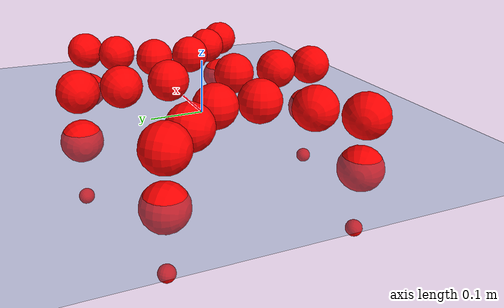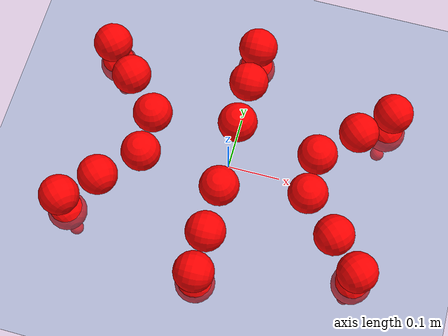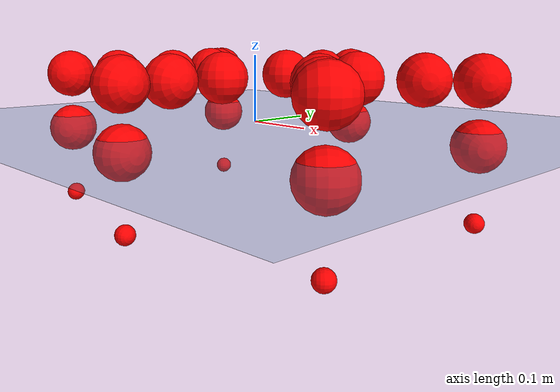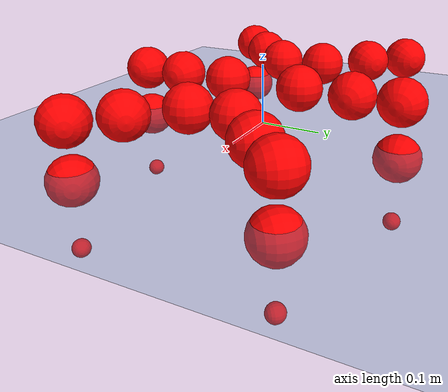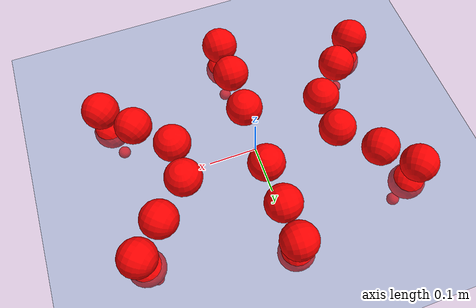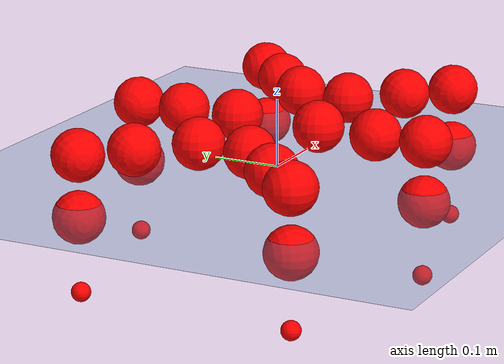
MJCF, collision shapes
<mujoco model="Golem">
  <compiler angle="radian" assetdir="assets" balanceinertia="true" inertiafromgeom="false"/>

  <option timestep="0.005" density="1.2" viscosity="2e-05"/>

  <size nkey="1"/>

  <visual>
    <quality shadowsize="8192"/>
    <map shadowclip="0.5"/>
  </visual>

  <default>
    <default class="/">
      <joint armature="0.01" damping="0.01" frictionloss="0.01"/>
      <geom contype="0" conaffinity="0" group="1" solref="-1000 -80"/>
      <site size="0.01 0.005 0.005" group="5"/>
      <general forcelimited="true" biastype="affine" gainprm="25" biasprm="0 -25 -0.5"/>
      <default class="visual">
        <geom type="mesh" group="2"/>
      </default>
      <default class="collision">
        <geom group="3"/>
      </default>
      <default class="foot">
        <geom size="0.01 0 0" condim="6" group="4" priority="1" solimp="0.015 1 0.01"/>
      </default>
      <default class="reward_collision_sphere">
        <geom group="5" rgba="1 0 0 1"/>
      </default>
    </default>
  </default>

  <asset>
    <texture type="skybox" colorspace="auto" name="//unnamed_texture_0" builtin="gradient" rgb1="0.95 0.95 0.95" rgb2="0.95 0.95 0.95" width="100" height="600"/>
    <texture type="2d" colorspace="auto" name="texplane" builtin="checker" rgb1="0.345 0.575 0.748" rgb2="0.345 0.575 0.748" markrgb="1 1 1" width="512" height="512"/>
    <material name="MatPlane" class="/" texture="texplane" texuniform="true" texrepeat="2 2" specular="0.9"/>
    <mesh name="body" class="/" file="body.stl" scale="0.001 0.001 0.001"/>
    <mesh name="coxa" class="/" file="coxa.stl" scale="0.001 0.001 0.001"/>
    <mesh name="femur" class="/" file="femur.stl" scale="0.001 0.001 0.001"/>
    <mesh name="tibia" class="/" file="tibia.stl" scale="0.001 0.001 0.001"/>
    <mesh name="tarsus" class="/" file="tarsus.stl" scale="0.001 0.001 0.001"/>
  </asset>

  <worldbody>
    <geom name="floor" class="/" size="100 100 0.125" type="plane" group="0" material="MatPlane"/>
    <light name="toplight_shadow" class="/" pos="0 0 5" dir="0.0990148 0.0990148 -0.990148" type="directional" ambient="0.04 0.04 0.04" diffuse="0.55 0.55 0.55" specular="0.12 0.12 0.12"/>
    <light name="toplight_fill" class="/" pos="0 0 5" dir="0.0990148 0.0990148 -0.990148" type="directional" castshadow="false" ambient="0.04 0.04 0.04" diffuse="0.3 0.3 0.3" specular="0.08 0.08 0.08"/>
    <body name="trunk" pos="0.000898783 0.000928922 0.000496078" quat="1 0.00022245 -9.53733e-05 0.000142456">
      <inertial pos="-0.000586769 8.74926e-05 -0.00455986" quat="0.999989 -0.000423778 0.00378754 0.00268068" mass="3.03254" diaginertia="0.0108078 0.00200017 0.0138716"/>
      <joint name="//unnamed_joint_0" type="free"/>
      <geom name="//unnamed_geom_1" class="/" pos="0 0 0.0685728" quat="1 0 0 0" type="mesh" rgba="0.9 0.9 0.9 1" mesh="body"/>
      <site name="imu" class="/" pos="0.130854 -0.00450807 0.106154" size="0.00938283"/>
      <camera name="track" class="/" pos="0 -1.45032 0" quat="0.707107 0.707107 0 0" mode="trackcom"/>
      <camera name="ego_camera" class="/" pos="0.132371 0 0.107145" quat="-0.5 -0.5 0.5 0.5"/>
      <body name="coxa_RR" pos="-0.180475 -0.0602113 0.0682731" quat="0.382514 0.000102157 0.000150706 -0.92395">
        <inertial pos="-6.18728e-05 0.0003061 0.000299164" quat="1 -0.000873819 -0.00028456 0.000295938" mass="0.165887" diaginertia="0.0111241 0.00200735 0.0139807"/>
        <joint name="coxa_joint_RR" class="/" pos="0 0 0" axis="0.000588618 0.00283956 -0.999996" range="-3.13768 3.14726" armature="0.00927419" damping="0.0107894" frictionloss="0.00947141"/>
        <geom name="//unnamed_geom_2" class="/" type="mesh" rgba="0.2 0.2 0.2 1" mesh="coxa"/>
        <geom name="//unnamed_geom_3" class="reward_collision_sphere" size="0.0375313" pos="-0.0305471 0 0"/>
        <body name="femur_RR" pos="0.0600509 0.00158924 -0.000129193" quat="0.500159 -0.499884 0.499928 0.50003">
          <inertial pos="-0.000663209 -4.03376e-05 -0.00124585" quat="0.99999 0.000124992 0.00128896 -0.00429833" mass="0.165967" diaginertia="0.0109973 0.00202246 0.0142015"/>
          <joint name="femur_joint_RR" class="/" pos="0 0 0" axis="0.00336385 -0.00172279 -0.999993" range="-3.14491 3.14183" armature="0.00947184" damping="0.00228936" frictionloss="0.00941215"/>
          <geom name="//unnamed_geom_4" class="/" type="mesh" rgba="0.9 0.9 0.9 1" mesh="femur"/>
          <geom name="//unnamed_geom_5" class="reward_collision_sphere" size="0.0375313"/>
          <body name="tibia_RR" pos="0.000924513 -0.078608 -0.000133367" quat="2.07911e-07 1 3.20122e-07 -9.00802e-08">
            <inertial pos="0.000294057 0.00037806 0.000147834" quat="0.999989 0.000869309 -0.001151 -0.00440021" mass="0.167032" diaginertia="0.0110635 0.00202137 0.0143413"/>
            <joint name="tibia_joint_RR" class="/" pos="0 0 0" axis="0.00120097 -0.000267764 0.999999" range="-3.12034 3.13639" armature="0.00972209" damping="0" frictionloss="0.00965461"/>
            <geom name="//unnamed_geom_6" class="/" type="mesh" rgba="0.2 0.2 0.2 1" mesh="tibia"/>
            <geom name="//unnamed_geom_7" class="reward_collision_sphere" size="0.0375313"/>
            <body name="tarsus_RR" pos="0.0895665 -0.000474873 -0.00100618" quat="1 -3.01488e-05 7.5378e-05 0.000158056">
              <inertial pos="0.062248 0.000556483 5.28898e-08" quat="0.497885 0.500298 0.498274 0.503522" mass="0.169786" diaginertia="0.0109872 0.00202523 0.0142807"/>
              <joint name="tarsus_joint_RR" class="/" pos="0 0 0" axis="-0.00112669 0.000879887 0.999999" range="-3.13196 3.15595" armature="0.00958718" damping="0.0408201" frictionloss="0.00951528"/>
              <geom name="//unnamed_geom_8" class="/" type="mesh" rgba="0.9 0.9 0.9 1" mesh="tarsus"/>
              <geom name="foot_1" class="foot" size="0.00917882" pos="0.114043 0 0" quat="0 -0.707107 0 0.707107"/>
              <geom name="//unnamed_geom_10" class="reward_collision_sphere" size="0.0375313"/>
              <geom name="//unnamed_geom_11" class="reward_collision_sphere" size="0.0140742" pos="0.109461 0 0"/>
              <site name="foot_1" class="foot" pos="0.114043 0 0" quat="0 -0.707107 0 0.707107" size="0.00938283"/>
            </body>
          </body>
        </body>
      </body>
      <body name="coxa_RM" pos="-0.000457466 -0.0969672 0.0683486" quat="0.707258 0.000241123 9.62429e-05 -0.706955">
        <inertial pos="0.000643216 0.000385742 5.23406e-05" quat="0.999994 -0.00304196 0.000344937 0.00137582" mass="0.165149" diaginertia="0.0109313 0.00200653 0.0141946"/>
        <joint name="coxa_joint_RM" class="/" pos="0 0 0" axis="0.000472947 0.000278004 -1" range="-3.14856 3.1363" armature="0.00954182" damping="0.0102523" frictionloss="0.00964628"/>
        <geom name="//unnamed_geom_12" class="/" type="mesh" rgba="0.2 0.2 0.2 1" mesh="coxa"/>
        <geom name="//unnamed_geom_13" class="reward_collision_sphere" size="0.0375313" pos="-0.0305471 0 0"/>
        <body name="femur_RM" pos="0.0592659 -0.000754704 -0.00069552" quat="0.499741 -0.499777 0.500162 0.50032">
          <inertial pos="0.00038849 -0.000151333 -5.51483e-05" quat="0.999993 0.00239332 0.00165299 -0.00218808" mass="0.164088" diaginertia="0.0109858 0.00201383 0.0140332"/>
          <joint name="femur_joint_RM" class="/" pos="0 0 0" axis="-0.000710101 -0.0020786 -0.999998" range="-3.14082 3.14064" armature="0.00927217" damping="0.0118975" frictionloss="0.00941306"/>
          <geom name="//unnamed_geom_14" class="/" type="mesh" rgba="0.9 0.9 0.9 1" mesh="femur"/>
          <geom name="//unnamed_geom_15" class="reward_collision_sphere" size="0.0375313"/>
          <body name="tibia_RM" pos="-0.000325018 -0.076819 -0.000104505" quat="3.62618e-05 1 5.17696e-05 4.18729e-06">
            <inertial pos="-0.00068118 -0.000203983 0.000880307" quat="0.999998 0.00138877 -0.000429009 0.00136677" mass="0.164142" diaginertia="0.0109324 0.00203461 0.0140759"/>
            <joint name="tibia_joint_RM" class="/" pos="0 0 0" axis="0.00272322 0.00606133 0.999978" range="-3.14464 3.14607" armature="0.00931103" damping="0.0128183" frictionloss="0.00951744"/>
            <geom name="//unnamed_geom_16" class="/" type="mesh" rgba="0.2 0.2 0.2 1" mesh="tibia"/>
            <geom name="//unnamed_geom_17" class="reward_collision_sphere" size="0.0375313"/>
            <body name="tarsus_RM" pos="0.0880721 -0.00046875 0.000991004" quat="1 -3.11192e-05 0.000124436 0.000127918">
              <inertial pos="0.0607516 -5.47834e-05 0.000455744" quat="0.500318 0.500936 0.497847 0.500893" mass="0.164975" diaginertia="0.0109513 0.0020036 0.0140117"/>
              <joint name="tarsus_joint_RM" class="/" pos="0 0 0" axis="0.00212141 0.00222981 0.999995" stiffness="0.000356296" range="-3.14496 3.1362" armature="0.00935529" damping="0.00779965" frictionloss="0.00925058"/>
              <geom name="//unnamed_geom_18" class="/" type="mesh" rgba="0.9 0.9 0.9 1" mesh="tarsus"/>
              <geom name="foot_2" class="foot" size="0.00930427" pos="0.114043 0 0" quat="0 -0.707107 0 0.707107"/>
              <geom name="//unnamed_geom_20" class="reward_collision_sphere" size="0.0375313"/>
              <geom name="//unnamed_geom_21" class="reward_collision_sphere" size="0.0140742" pos="0.109461 0 0"/>
              <site name="foot_2" class="foot" pos="0.114043 0 0" quat="0 -0.707107 0 0.707107" size="0.00938283"/>
            </body>
          </body>
        </body>
      </body>
      <body name="coxa_RF" pos="0.181336 -0.0604045 0.0685718" quat="0.923846 7.06731e-05 0.00014897 -0.382764">
        <inertial pos="-0.000791869 0.000513091 -0.00013965" quat="0.999999 0.00088444 -0.000111963 -0.000842459" mass="0.167323" diaginertia="0.0107687 0.00198635 0.0140773"/>
        <joint name="coxa_joint_RF" class="/" pos="0 0 0" axis="-0.00257024 0.00205779 -0.999995" range="-3.12833 3.13745" armature="0.00909785" damping="0.00793203" frictionloss="0.00938859"/>
        <geom name="//unnamed_geom_22" class="/" type="mesh" rgba="0.2 0.2 0.2 1" mesh="coxa"/>
        <geom name="//unnamed_geom_23" class="reward_collision_sphere" size="0.0375313" pos="-0.0305471 0 0"/>
        <body name="femur_RF" pos="0.0596876 -0.000529205 -0.00095457" quat="0.499937 -0.500111 0.499965 0.499988">
          <inertial pos="-0.000734032 0.000429368 -0.00078631" quat="0.999999 -0.00026779 0.00107771 5.54546e-05" mass="0.166684" diaginertia="0.0108 0.00200876 0.0140844"/>
          <joint name="femur_joint_RF" class="/" pos="0 0 0" axis="8.48276e-05 0.00466487 -0.999989" range="-3.12914 3.15521" armature="0.00929247" damping="0.0110564" frictionloss="0.00919842"/>
          <geom name="//unnamed_geom_24" class="/" type="mesh" rgba="0.9 0.9 0.9 1" mesh="femur"/>
          <geom name="//unnamed_geom_25" class="reward_collision_sphere" size="0.0375313"/>
          <body name="tibia_RF" pos="-9.09332e-05 -0.0781403 -0.00110718" quat="3.93168e-05 1 -4.09728e-05 -2.4691e-05">
            <inertial pos="-0.00016213 0.000449216 0.000442026" quat="0.99999 -0.0024516 0.00253617 0.00292184" mass="0.163696" diaginertia="0.0109337 0.00199926 0.0141392"/>
            <joint name="tibia_joint_RF" class="/" pos="0 0 0" axis="-0.00472731 0.00161642 0.999988" stiffness="0.001218" range="-3.14465 3.15222" armature="0.00941559" damping="0" frictionloss="0.009236"/>
            <geom name="//unnamed_geom_26" class="/" type="mesh" rgba="0.2 0.2 0.2 1" mesh="tibia"/>
            <geom name="//unnamed_geom_27" class="reward_collision_sphere" size="0.0375313"/>
            <body name="tarsus_RF" pos="0.0889839 -0.000278623 0.00058992" quat="1 5.34639e-05 -0.000346414 2.70196e-05">
              <inertial pos="0.0602305 0.000245188 0.000307585" quat="0.502088 0.49907 0.499706 0.499129" mass="0.165196" diaginertia="0.0108827 0.00203191 0.0142165"/>
              <joint name="tarsus_joint_RF" class="/" pos="0 0 0" axis="-0.000836392 -0.00561865 0.999984" range="-3.12237 3.13701" armature="0.00910194" damping="0.000940245" frictionloss="0.00989457"/>
              <geom name="//unnamed_geom_28" class="/" type="mesh" rgba="0.9 0.9 0.9 1" mesh="tarsus"/>
              <geom name="foot_3" class="foot" size="0.00949045" pos="0.114043 0 0" quat="0 -0.707107 0 0.707107"/>
              <geom name="//unnamed_geom_30" class="reward_collision_sphere" size="0.0375313"/>
              <geom name="//unnamed_geom_31" class="reward_collision_sphere" size="0.0140742" pos="0.109461 0 0"/>
              <site name="foot_3" class="foot" pos="0.114043 0 0" quat="0 -0.707107 0 0.707107" size="0.00938283"/>
            </body>
          </body>
        </body>
      </body>
      <body name="coxa_LR" pos="-0.181476 0.0627879 0.0703819" quat="0.38269 -1.37562e-05 -8.03946e-06 0.923877">
        <inertial pos="-0.000147179 0.000214463 -0.000235235" quat="0.999996 0.000629944 0.0027854 0.000243553" mass="0.163037" diaginertia="0.0107443 0.00197049 0.013964"/>
        <joint name="coxa_joint_LR" class="/" pos="0 0 0" axis="-0.000412714 0.00112294 -0.999999" range="-3.14339 3.15769" armature="0.00911678" damping="0.00961103" frictionloss="0.00894384"/>
        <geom name="//unnamed_geom_32" class="/" type="mesh" rgba="0.2 0.2 0.2 1" mesh="coxa"/>
        <geom name="//unnamed_geom_33" class="reward_collision_sphere" size="0.0375313" pos="-0.0305471 0 0"/>
        <body name="femur_LR" pos="0.0613956 -0.00288931 -0.00128076" quat="0.500011 -0.499988 0.500025 0.499976">
          <inertial pos="0.000253292 2.05291e-07 0.000196885" quat="0.99999 -0.00121773 -0.00345273 0.00273799" mass="0.167053" diaginertia="0.0111331 0.00205587 0.0142425"/>
          <joint name="femur_joint_LR" class="/" pos="0 0 0" axis="-0.00100272 0.000862231 0.999999" range="-3.14603 3.15044" armature="0.00900398" damping="0.00451704" frictionloss="0.00929777"/>
          <geom name="//unnamed_geom_34" class="/" type="mesh" rgba="0.9 0.9 0.9 1" mesh="femur"/>
          <geom name="//unnamed_geom_35" class="reward_collision_sphere" size="0.0375313"/>
          <body name="tibia_LR" pos="0.000781961 -0.0791025 -0.00114661" quat="-3.2936e-05 1 0.00027708 -3.76885e-05">
            <inertial pos="-0.00121087 0.000855258 0.000220085" quat="0.999997 0.000858526 5.36037e-05 -0.0022032" mass="0.16731" diaginertia="0.0111257 0.00200237 0.0139927"/>
            <joint name="tibia_joint_LR" class="/" pos="0 0 0" axis="0.000450647 0.000275228 -1" range="-3.14319 3.14151" armature="0.00939864" damping="0.0030141" frictionloss="0.00895754"/>
            <geom name="//unnamed_geom_36" class="/" type="mesh" rgba="0.2 0.2 0.2 1" mesh="tibia"/>
            <geom name="//unnamed_geom_37" class="reward_collision_sphere" size="0.0375313"/>
            <body name="tarsus_LR" pos="0.0898571 6.97403e-05 0.00226119" quat="1 0.000214018 -4.58593e-05 0.000276359">
              <inertial pos="0.062556 0.00137337 0.000243937" quat="0.49918 0.50216 0.497686 0.500963" mass="0.162472" diaginertia="0.0107196 0.00197611 0.0138773"/>
              <joint name="tarsus_joint_LR" class="/" pos="0 0 0" axis="0.000140371 1.8153e-05 -1" stiffness="0.00213914" range="-3.14817 3.12972" armature="0.00891003" damping="0.027486" frictionloss="0.00943827"/>
              <geom name="//unnamed_geom_38" class="/" type="mesh" rgba="0.9 0.9 0.9 1" mesh="tarsus"/>
              <geom name="foot_4" class="foot" size="0.00939326" pos="0.114043 0 0" quat="0.707107 0 -0.707107 0"/>
              <geom name="//unnamed_geom_40" class="reward_collision_sphere" size="0.0375313"/>
              <geom name="//unnamed_geom_41" class="reward_collision_sphere" size="0.0140742" pos="0.109461 0 0"/>
              <site name="foot_4" class="foot" pos="0.114043 0 0" quat="0.707107 0 -0.707107 0" size="0.00938283"/>
            </body>
          </body>
        </body>
      </body>
      <body name="coxa_LM" pos="-0.000221016 0.0946814 0.0692191" quat="0.707302 2.60866e-05 -0.000364428 0.706911">
        <inertial pos="0.000180351 -0.000246536 0.00196523" quat="0.999999 -0.000232625 0.00143539 -0.000552526" mass="0.164084" diaginertia="0.0108898 0.00199182 0.0139608"/>
        <joint name="coxa_joint_LM" class="/" pos="0 0 0" axis="0.000576888 -0.00194524 -0.999998" range="-3.14146 3.1428" armature="0.00991332" damping="0" frictionloss="0.00940645"/>
        <geom name="//unnamed_geom_42" class="/" type="mesh" rgba="0.2 0.2 0.2 1" mesh="coxa"/>
        <geom name="//unnamed_geom_43" class="reward_collision_sphere" size="0.0375313" pos="-0.0305471 0 0"/>
        <body name="femur_LM" pos="0.0569551 0.00130651 -0.000697804" quat="0.499631 -0.49997 0.500073 0.500326">
          <inertial pos="0.00017313 -0.000138037 -0.000218875" quat="0.999989 0.00135117 -0.00142243 0.00420477" mass="0.16371" diaginertia="0.0107678 0.001988 0.0139889"/>
          <joint name="femur_joint_LM" class="/" pos="0 0 0" axis="0.00173694 -0.000494113 0.999998" stiffness="0.000459878" range="-3.15819 3.14515" armature="0.00893744" damping="0.00379048" frictionloss="0.00934151"/>
          <geom name="//unnamed_geom_44" class="/" type="mesh" rgba="0.9 0.9 0.9 1" mesh="femur"/>
          <geom name="//unnamed_geom_45" class="reward_collision_sphere" size="0.0375313"/>
          <body name="tibia_LM" pos="-0.0004567 -0.075985 0.000840703" quat="-6.3985e-05 1 -2.93583e-05 -1.82437e-05">
            <inertial pos="0.000528278 -0.00162242 0.00116576" quat="1 -0.000272411 0.000707628 -0.000497925" mass="0.165613" diaginertia="0.0110798 0.00201084 0.0140482"/>
            <joint name="tibia_joint_LM" class="/" pos="0 0 0" axis="-0.00507092 0.00289312 -0.999983" range="-3.135 3.14159" armature="0.00901608" damping="0.000665394" frictionloss="0.00966843"/>
            <geom name="//unnamed_geom_46" class="/" type="mesh" rgba="0.2 0.2 0.2 1" mesh="tibia"/>
            <geom name="//unnamed_geom_47" class="reward_collision_sphere" size="0.0375313"/>
            <body name="tarsus_LM" pos="0.090503 -0.000175292 -0.00137363" quat="1 -6.12886e-05 0.000254581 -0.000316703">
              <inertial pos="0.0617267 9.59919e-05 -0.00101933" quat="0.499991 0.500011 0.499986 0.500011" mass="0.166826" diaginertia="0.0109932 0.00206097 0.0143548"/>
              <joint name="tarsus_joint_LM" class="/" pos="0 0 0" axis="-0.00422416 -0.000518984 -0.999991" range="-3.16696 3.14255" armature="0.0094627" damping="0" frictionloss="0.0093304"/>
              <geom name="//unnamed_geom_48" class="/" type="mesh" rgba="0.9 0.9 0.9 1" mesh="tarsus"/>
              <geom name="foot_5" class="foot" size="0.00941374" pos="0.114043 0 0" quat="0.707107 0 -0.707107 0"/>
              <geom name="//unnamed_geom_50" class="reward_collision_sphere" size="0.0375313"/>
              <geom name="//unnamed_geom_51" class="reward_collision_sphere" size="0.0140742" pos="0.109461 0 0"/>
              <site name="foot_5" class="foot" pos="0.114043 0 0" quat="0.707107 0 -0.707107 0" size="0.00938283"/>
            </body>
          </body>
        </body>
      </body>
      <body name="coxa_LF" pos="0.180976 0.0611284 0.0699118" quat="0.923918 3.71752e-05 0.000188342 0.382589">
        <inertial pos="0.000266248 0.000954715 0.000297135" quat="0.999999 -0.000652336 0.00127618 -0.000360546" mass="0.168159" diaginertia="0.0112058 0.00201486 0.0143264"/>
        <joint name="coxa_joint_LF" class="/" pos="0 0 0" axis="-2.6095e-05 2.18013e-05 -1" range="-3.14228 3.13539" armature="0.0100147" damping="0.0064203" frictionloss="0.00947991"/>
        <geom name="//unnamed_geom_52" class="/" type="mesh" rgba="0.2 0.2 0.2 1" mesh="coxa"/>
        <geom name="//unnamed_geom_53" class="reward_collision_sphere" size="0.0375313" pos="-0.0305471 0 0"/>
        <body name="femur_LF" pos="0.0602437 -0.000955562 -0.00149981" quat="0.499949 -0.499939 0.500036 0.500077">
          <inertial pos="-0.000910052 -0.000569038 0.00110981" quat="1 -9.89004e-06 -1.79926e-05 -8.65409e-06" mass="0.165097" diaginertia="0.0110655 0.00203557 0.0141464"/>
          <joint name="femur_joint_LF" class="/" pos="0 0 0" axis="-0.00266581 0.00461973 0.999986" range="-3.14376 3.12401" armature="0.00942771" damping="0.00273306" frictionloss="0.00958634"/>
          <geom name="//unnamed_geom_54" class="/" type="mesh" rgba="0.9 0.9 0.9 1" mesh="femur"/>
          <geom name="//unnamed_geom_55" class="reward_collision_sphere" size="0.0375313"/>
          <body name="tibia_LF" pos="0.000990002 -0.0777722 0.000749944" quat="-1.04871e-07 1 6.11514e-05 -1.83121e-05">
            <inertial pos="0.000404996 -0.000339995 -8.89343e-05" quat="0.999998 -0.000102764 -0.000978707 0.00172118" mass="0.165346" diaginertia="0.0110608 0.00200322 0.0141158"/>
            <joint name="tibia_joint_LF" class="/" pos="0 0 0" axis="-0.00146242 0.00132419 -0.999998" range="-3.13493 3.13319" armature="0.00893168" damping="0.000903962" frictionloss="0.00952917"/>
            <geom name="//unnamed_geom_56" class="/" type="mesh" rgba="0.2 0.2 0.2 1" mesh="tibia"/>
            <geom name="//unnamed_geom_57" class="reward_collision_sphere" size="0.0375313"/>
            <body name="tarsus_LF" pos="0.0900216 -0.000771714 0.000417207" quat="1 8.35607e-05 -0.000410998 -0.000536294">
              <inertial pos="0.0634277 0.000329683 0.000381528" quat="0.499976 0.500533 0.499585 0.499905" mass="0.165983" diaginertia="0.0108129 0.00197666 0.0140747"/>
              <joint name="tarsus_joint_LF" class="/" pos="0 0 0" axis="0.00525013 0.00560576 -0.999971" stiffness="0.0284233" range="-3.13918 3.14171" armature="0.00935004" damping="0.0243639" frictionloss="0.00899871"/>
              <geom name="//unnamed_geom_58" class="/" type="mesh" rgba="0.9 0.9 0.9 1" mesh="tarsus"/>
              <geom name="foot_6" class="foot" size="0.00933564" pos="0.114043 0 0" quat="0.707107 0 -0.707107 0"/>
              <geom name="//unnamed_geom_60" class="reward_collision_sphere" size="0.0375313"/>
              <geom name="//unnamed_geom_61" class="reward_collision_sphere" size="0.0140742" pos="0.109461 0 0"/>
              <site name="foot_6" class="foot" pos="0.114043 0 0" quat="0.707107 0 -0.707107 0" size="0.00938283"/>
            </body>
          </body>
        </body>
      </body>
    </body>
  </worldbody>

  <contact>
    <pair class="/" geom1="floor" geom2="foot_1" name="//unnamed_contact_0"/>
    <pair class="/" geom1="floor" geom2="foot_2" name="//unnamed_contact_1"/>
    <pair class="/" geom1="floor" geom2="foot_3" name="//unnamed_contact_2"/>
    <pair class="/" geom1="floor" geom2="foot_4" name="//unnamed_contact_3"/>
    <pair class="/" geom1="floor" geom2="foot_5" name="//unnamed_contact_4"/>
    <pair class="/" geom1="floor" geom2="foot_6" name="//unnamed_contact_5"/>
  </contact>

  <actuator>
    <general name="coxa_joint_RR" class="/" joint="coxa_joint_RR" forcerange="-6.697 6.697" gainprm="22.6661" biasprm="0 -22.6661 -0.500847"/>
    <general name="femur_joint_RR" class="/" joint="femur_joint_RR" forcerange="-6.66869 6.66869" gainprm="22.6661" biasprm="0 -22.6661 -0.500847"/>
    <general name="tibia_joint_RR" class="/" joint="tibia_joint_RR" forcerange="-6.58638 6.58638" gainprm="22.6661" biasprm="0 -22.6661 -0.500847"/>
    <general name="tarsus_joint_RR" class="/" joint="tarsus_joint_RR" forcerange="-6.62102 6.62102" gainprm="22.6661" biasprm="0 -22.6661 -0.500847"/>
    <general name="coxa_joint_RM" class="/" joint="coxa_joint_RM" forcerange="-6.8384 6.8384" gainprm="22.6661" biasprm="0 -22.6661 -0.500847"/>
    <general name="femur_joint_RM" class="/" joint="femur_joint_RM" forcerange="-6.83539 6.83539" gainprm="22.6661" biasprm="0 -22.6661 -0.500847"/>
    <general name="tibia_joint_RM" class="/" joint="tibia_joint_RM" forcerange="-6.80547 6.80547" gainprm="22.6661" biasprm="0 -22.6661 -0.500847"/>
    <general name="tarsus_joint_RM" class="/" joint="tarsus_joint_RM" forcerange="-7.07804 7.07804" gainprm="22.6661" biasprm="0 -22.6661 -0.500847"/>
    <general name="coxa_joint_RF" class="/" joint="coxa_joint_RF" forcerange="-6.97914 6.97914" gainprm="22.6661" biasprm="0 -22.6661 -0.500847"/>
    <general name="femur_joint_RF" class="/" joint="femur_joint_RF" forcerange="-6.88684 6.88684" gainprm="22.6661" biasprm="0 -22.6661 -0.500847"/>
    <general name="tibia_joint_RF" class="/" joint="tibia_joint_RF" forcerange="-6.97588 6.97588" gainprm="22.6661" biasprm="0 -22.6661 -0.500847"/>
    <general name="tarsus_joint_RF" class="/" joint="tarsus_joint_RF" forcerange="-6.68424 6.68424" gainprm="22.6661" biasprm="0 -22.6661 -0.500847"/>
    <general name="coxa_joint_LR" class="/" joint="coxa_joint_LR" forcerange="-6.84416 6.84416" gainprm="22.6661" biasprm="0 -22.6661 -0.500847"/>
    <general name="femur_joint_LR" class="/" joint="femur_joint_LR" forcerange="-6.93953 6.93953" gainprm="22.6661" biasprm="0 -22.6661 -0.500847"/>
    <general name="tibia_joint_LR" class="/" joint="tibia_joint_LR" forcerange="-7.0078 7.0078" gainprm="22.6661" biasprm="0 -22.6661 -0.500847"/>
    <general name="tarsus_joint_LR" class="/" joint="tarsus_joint_LR" forcerange="-7.07464 7.07464" gainprm="22.6661" biasprm="0 -22.6661 -0.500847"/>
    <general name="coxa_joint_LM" class="/" joint="coxa_joint_LM" forcerange="-7.00471 7.00471" gainprm="22.6661" biasprm="0 -22.6661 -0.500847"/>
    <general name="femur_joint_LM" class="/" joint="femur_joint_LM" forcerange="-6.78063 6.78063" gainprm="22.6661" biasprm="0 -22.6661 -0.500847"/>
    <general name="tibia_joint_LM" class="/" joint="tibia_joint_LM" forcerange="-7.0352 7.0352" gainprm="22.6661" biasprm="0 -22.6661 -0.500847"/>
    <general name="tarsus_joint_LM" class="/" joint="tarsus_joint_LM" forcerange="-6.72182 6.72182" gainprm="22.6661" biasprm="0 -22.6661 -0.500847"/>
    <general name="coxa_joint_LF" class="/" joint="coxa_joint_LF" forcerange="-6.90285 6.90285" gainprm="22.6661" biasprm="0 -22.6661 -0.500847"/>
    <general name="femur_joint_LF" class="/" joint="femur_joint_LF" forcerange="-6.9503 6.9503" gainprm="22.6661" biasprm="0 -22.6661 -0.500847"/>
    <general name="tibia_joint_LF" class="/" joint="tibia_joint_LF" forcerange="-6.63048 6.63048" gainprm="22.6661" biasprm="0 -22.6661 -0.500847"/>
    <general name="tarsus_joint_LF" class="/" joint="tarsus_joint_LF" forcerange="-6.98931 6.98931" gainprm="22.6661" biasprm="0 -22.6661 -0.500847"/>
  </actuator>

  <sensor>
    <gyro site="imu" name="imu_angular_velocity"/>
    <velocimeter site="imu" name="imu_linear_velocity"/>
    <framelinvel objtype="site" objname="foot_1" name="foot_1_global_linear_velocity"/>
    <framelinvel objtype="site" objname="foot_2" name="foot_2_global_linear_velocity"/>
    <framelinvel objtype="site" objname="foot_3" name="foot_3_global_linear_velocity"/>
    <framelinvel objtype="site" objname="foot_4" name="foot_4_global_linear_velocity"/>
    <framelinvel objtype="site" objname="foot_5" name="foot_5_global_linear_velocity"/>
    <framelinvel objtype="site" objname="foot_6" name="foot_6_global_linear_velocity"/>
  </sensor>

  <keyframe>
    <key name="home" qpos="0 0 0.1457 1 0 0 0 0 0 0 0 0 0 0 0 0 0 0 0 0 0 0 0 0 0 0 0 0 0 0 0"/>
  </keyframe>
</mujoco>
